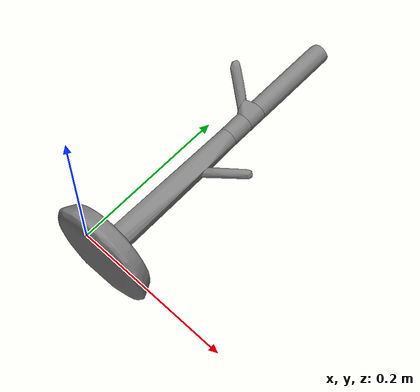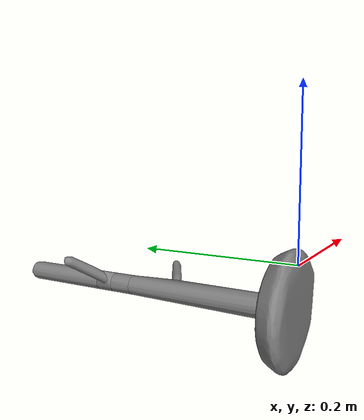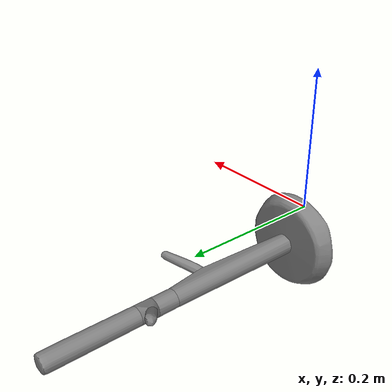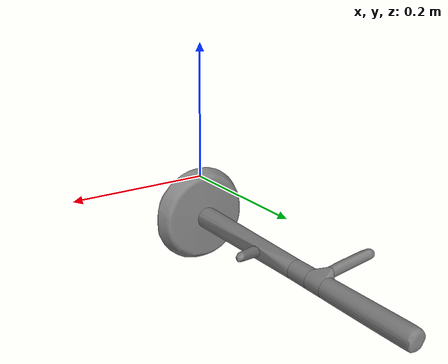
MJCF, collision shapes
<mujoco model="rack">
  <compiler angle="radian" meshdir="assets" texturedir="assets" inertiafromgeom="auto"/>

  <default>
    <default class="mug_rack_visual">
      <geom group="2" type="mesh" contype="0" conaffinity="0" mass="0"/>
    </default>
    <default class="mug_rack_collision">
      <geom group="3" type="mesh" condim="6" priority="1" solref="0.01 1" solimp="0.99 0.999 0.001 0.5 1"/>
    </default>
  </default>

  <asset>
    <texture type="2d" name="rack_texture" file="rack2_material_0.png"/>
    <material name="rack_material" texture="rack_texture"/>
    <mesh name="rack" file="mugrack2.obj"/>
    <mesh name="rack_collision_0" file="mugrack2_collision_0.obj"/>
    <mesh name="rack_collision_1" file="mugrack2_collision_1.obj"/>
    <mesh name="rack_collision_2" file="mugrack2_collision_2.obj"/>
    <mesh name="rack_collision_3" file="mugrack2_collision_3.obj"/>
    <mesh name="rack_collision_4" file="mugrack2_collision_4.obj"/>
    <mesh name="rack_collision_5" file="mugrack2_collision_5.obj"/>
    <mesh name="rack_collision_6" file="mugrack2_collision_6.obj"/>
  </asset>

  <worldbody>
    <body name="rack">
      <geom name="rack_visual_geom" material="rack_material" mesh="rack" class="mug_rack_visual"/>
      <geom name="rack_collision_geom_0" mesh="rack_collision_0" class="mug_rack_collision"/>
      <geom name="rack_collision_geom_1" mesh="rack_collision_1" class="mug_rack_collision"/>
      <geom name="rack_collision_geom_2" mesh="rack_collision_2" class="mug_rack_collision"/>
      <geom name="rack_collision_geom_3" mesh="rack_collision_3" class="mug_rack_collision"/>
      <geom name="rack_collision_geom_4" mesh="rack_collision_4" class="mug_rack_collision"/>
      <geom name="rack_collision_geom_5" mesh="rack_collision_5" class="mug_rack_collision"/>
      <geom name="rack_collision_geom_6" mesh="rack_collision_6" class="mug_rack_collision"/>
    </body>
  </worldbody>
</mujoco>
